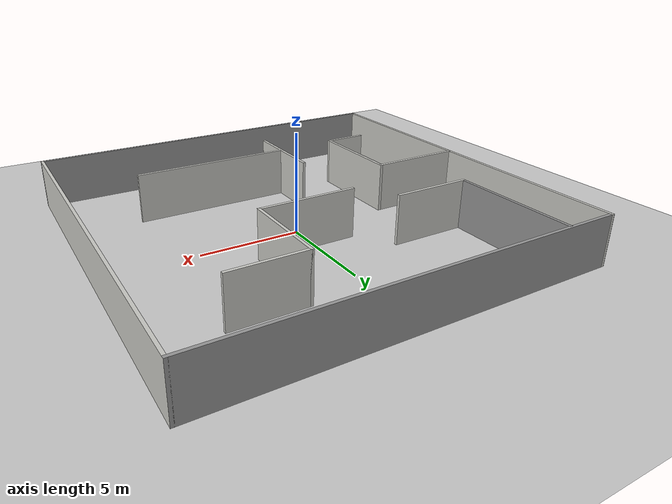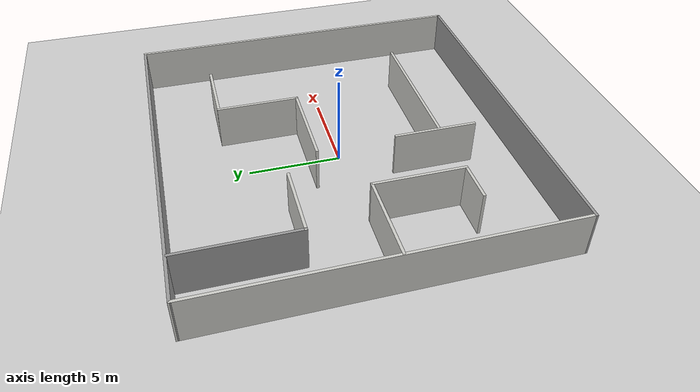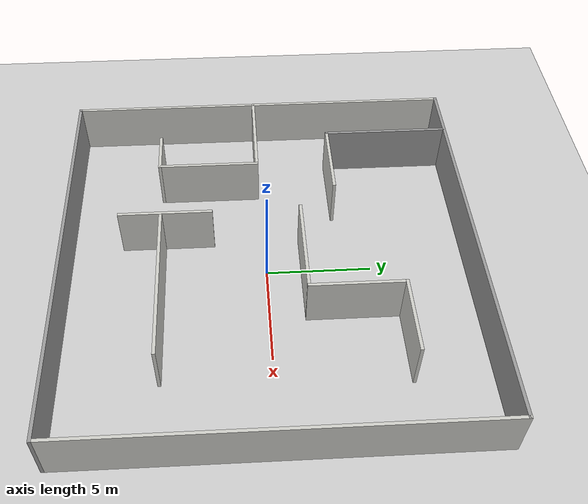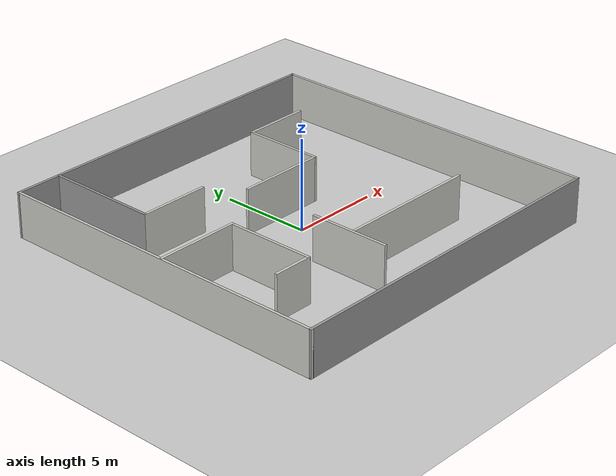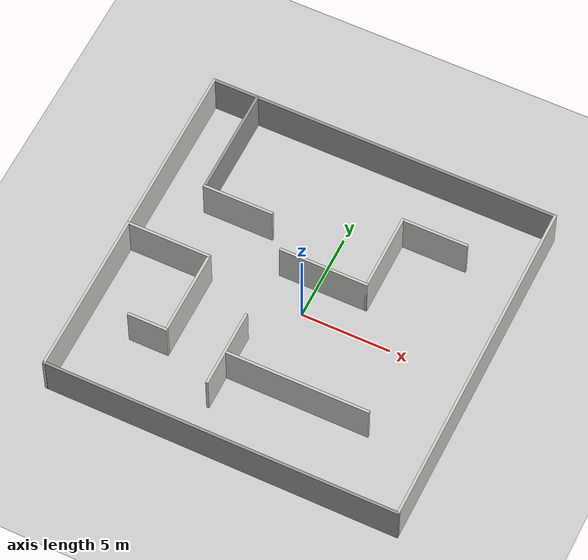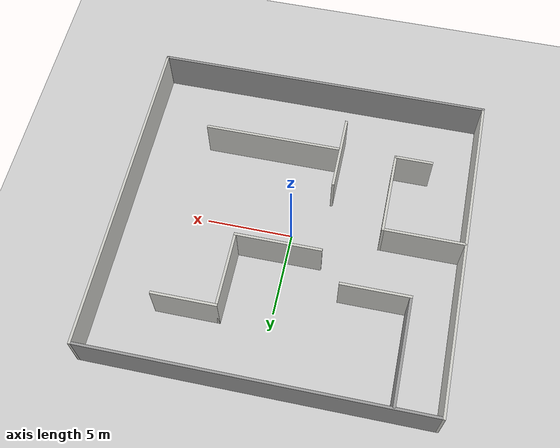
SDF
<sdf version="1.7">
 <world name="default">
  <include><uri>model://ground_plane</uri></include>
  <light name="sun" type="directional">
   <pose>0 0 10 0 -0 0</pose>
   <diffuse>0.8 0.8 0.8 1</diffuse>
   <specular>0.2 0.2 0.2 1</specular>
   <attenuation>
    <range>1000</range>
    <constant>0.9</constant>
    <linear>0.01</linear>
    <quadratic>0.001</quadratic>
   </attenuation>
   <direction>-0.5 0.1 -0.9</direction>
   <spot><inner_angle>0</inner_angle><outer_angle>0</outer_angle><falloff>0</falloff></spot>
  </light>
  <gravity>0 0 -9.8</gravity>
  <magnetic_field>6e-06 2.3e-05 -4.2e-05</magnetic_field>
  <atmosphere type="adiabatic"/>
  <physics type="ode">
   <max_step_size>0.001</max_step_size>
   <real_time_factor>1</real_time_factor>
   <real_time_update_rate>1000</real_time_update_rate>
  </physics>
  <scene><ambient>0.4 0.4 0.4 1</ambient><background>0.7 0.7 0.7 1</background><shadows>1</shadows></scene>
  <audio><device>default</device></audio>
  <spherical_coordinates>
   <surface_model>EARTH_WGS84</surface_model>
   <latitude_deg>0</latitude_deg>
   <longitude_deg>0</longitude_deg>
   <elevation>0</elevation>
   <heading_deg>0</heading_deg>
  </spherical_coordinates>
  <model name="Indoor">
   <pose>-0.002148 0.088455 0 0 -0 0</pose>
   <link name="Wall_11">
    <collision name="Wall_11_Collision">
     <geometry><box><size>19.7635 0.15 2.5</size></box></geometry>
     <pose>0 0 1.25 0 -0 0</pose>
    </collision>
    <visual name="Wall_11_Visual">
     <pose>0 0 1.25 0 -0 0</pose>
     <geometry><box><size>19.7635 0.15 2.5</size></box></geometry>
     <material>
      <script><uri>file://media/materials/scripts/gazebo.material</uri><name>Gazebo/Grey</name></script>
      <ambient>1 1 1 1</ambient>
     </material>
     <meta><layer>0</layer></meta>
    </visual>
    <pose>-4.1e-05 9.5702 0 0 -0 1.7e-05</pose>
   </link>
   <link name="Wall_12">
    <collision name="Wall_12_Collision">
     <geometry><box><size>19.25 0.15 2.5</size></box></geometry>
     <pose>0 0 1.25 0 -0 0</pose>
    </collision>
    <visual name="Wall_12_Visual">
     <pose>0 0 1.25 0 -0 0</pose>
     <geometry><box><size>19.25 0.15 2.5</size></box></geometry>
     <material>
      <script><uri>file://media/materials/scripts/gazebo.material</uri><name>Gazebo/CeilingTiled</name></script>
      <ambient>1 1 1 1</ambient>
     </material>
     <meta><layer>0</layer></meta>
    </visual>
    <pose>9.8067 0.020366 0 0 -0 -1.5708</pose>
   </link>
   <link name="Wall_15">
    <collision name="Wall_15_Collision">
     <geometry><box><size>6.25 0.15 2.5</size></box></geometry>
     <pose>0 0 1.25 0 -0 0</pose>
    </collision>
    <visual name="Wall_15_Visual">
     <pose>0 0 1.25 0 -0 0</pose>
     <geometry><box><size>6.25 0.15 2.5</size></box></geometry>
     <material>
      <script><uri>file://media/materials/scripts/gazebo.material</uri><name>Gazebo/Grey</name></script>
      <ambient>1 1 1 1</ambient>
     </material>
     <meta><layer>0</layer></meta>
    </visual>
    <pose>-7.27014 6.43628 0 0 -0 -1.5708</pose>
   </link>
   <link name="Wall_16">
    <collision name="Wall_16_Collision">
     <geometry><box><size>4 0.15 2.5</size></box></geometry>
     <pose>0 0 1.25 0 -0 0</pose>
    </collision>
    <visual name="Wall_16_Visual">
     <pose>0 0 1.25 0 -0 0</pose>
     <geometry><box><size>4 0.15 2.5</size></box></geometry>
     <material>
      <script><uri>file://media/materials/scripts/gazebo.material</uri><name>Gazebo/CeilingTiled</name></script>
      <ambient>1 1 1 1</ambient>
     </material>
     <meta><layer>0</layer></meta>
    </visual>
    <pose>-5.34514 3.38627 0 0 -0 0</pose>
   </link>
   <link name="Wall_21">
    <collision name="Wall_21_Collision">
     <geometry><box><size>4.75 0.15 2.5</size></box></geometry>
     <pose>0 0 1.25 0 -0 0</pose>
    </collision>
    <visual name="Wall_21_Visual">
     <pose>0 0 1.25 0 -0 0</pose>
     <geometry><box><size>4.75 0.15 2.5</size></box></geometry>
     <material>
      <script><uri>file://media/materials/scripts/gazebo.material</uri><name>Gazebo/CeilingTiled</name></script>
      <ambient>1 1 1 1</ambient>
     </material>
     <meta><layer>0</layer></meta>
    </visual>
    <pose>-7.45099 -0.341702 0 0 -0 0</pose>
   </link>
   <link name="Wall_23">
    <collision name="Wall_23_Collision">
     <geometry><box><size>5 0.15 2.5</size></box></geometry>
     <pose>0 0 1.25 0 -0 0</pose>
    </collision>
    <visual name="Wall_23_Visual">
     <pose>0 0 1.25 0 -0 0</pose>
     <geometry><box><size>5 0.15 2.5</size></box></geometry>
     <material>
      <script><uri>file://media/materials/scripts/gazebo.material</uri><name>Gazebo/CeilingTiled</name></script>
      <ambient>1 1 1 1</ambient>
     </material>
     <meta><layer>0</layer></meta>
    </visual>
    <pose>-5.15099 -2.7667 0 0 -0 -1.5708</pose>
   </link>
   <link name="Wall_24">
    <collision name="Wall_24_Collision">
     <geometry><box><size>2.25 0.15 2.5</size></box></geometry>
     <pose>0 0 1.25 0 -0 0</pose>
    </collision>
    <visual name="Wall_24_Visual">
     <pose>0 0 1.25 0 -0 0</pose>
     <geometry><box><size>2.25 0.15 2.5</size></box></geometry>
     <material>
      <script><uri>file://media/materials/scripts/gazebo.material</uri><name>Gazebo/CeilingTiled</name></script>
      <ambient>1 1 1 1</ambient>
     </material>
     <meta><layer>0</layer></meta>
    </visual>
    <pose>-6.20099 -5.1917 0 0 -0 3.14159</pose>
   </link>
   <link name="Wall_27">
    <collision name="Wall_27_Collision">
     <geometry><box><size>4.5 0.15 2.5</size></box></geometry>
     <pose>0 0 1.25 0 -0 0</pose>
    </collision>
    <visual name="Wall_27_Visual">
     <pose>0 0 1.25 0 -0 0</pose>
     <geometry><box><size>4.5 0.15 2.5</size></box></geometry>
     <material>
      <script><uri>file://media/materials/scripts/gazebo.material</uri><name>Gazebo/CeilingTiled</name></script>
      <ambient>1 1 1 1</ambient>
     </material>
     <meta><layer>0</layer></meta>
    </visual>
    <pose>-1.90485 -4.84055 0 0 -0 -1.5708</pose>
   </link>
   <link name="Wall_29">
    <collision name="Wall_29_Collision">
     <geometry><box><size>8 0.15 2.5</size></box></geometry>
     <pose>0 0 1.25 0 -0 0</pose>
    </collision>
    <visual name="Wall_29_Visual">
     <pose>0 0 1.25 0 -0 0</pose>
     <geometry><box><size>8 0.15 2.5</size></box></geometry>
     <material>
      <script><uri>file://media/materials/scripts/gazebo.material</uri><name>Gazebo/CeilingTiled</name></script>
      <ambient>1 1 1 1</ambient>
     </material>
     <meta><layer>0</layer></meta>
    </visual>
    <pose>2.13141 -5.05757 0 0 -0 0</pose>
   </link>
   <link name="Wall_31">
    <collision name="Wall_31_Collision">
     <geometry><box><size>5 0.15 2.5</size></box></geometry>
     <pose>0 0 1.25 0 -0 0</pose>
    </collision>
    <visual name="Wall_31_Visual">
     <pose>0 0 1.25 0 -0 0</pose>
     <geometry><box><size>5 0.15 2.5</size></box></geometry>
     <material>
      <script><uri>file://media/materials/scripts/gazebo.material</uri><name>Gazebo/CeilingTiled</name></script>
      <ambient>1 1 1 1</ambient>
     </material>
     <meta><layer>0</layer></meta>
    </visual>
    <pose>0.408897 1.61784 0 0 -0 0</pose>
   </link>
   <link name="Wall_32">
    <collision name="Wall_32_Collision">
     <geometry><box><size>4.5 0.15 2.5</size></box></geometry>
     <pose>0 0 1.25 0 -0 0</pose>
    </collision>
    <visual name="Wall_32_Visual">
     <pose>0 0 1.25 0 -0 0</pose>
     <geometry><box><size>4.5 0.15 2.5</size></box></geometry>
     <material>
      <script><uri>file://media/materials/scripts/gazebo.material</uri><name>Gazebo/CeilingTiled</name></script>
      <ambient>1 1 1 1</ambient>
     </material>
     <meta><layer>0</layer></meta>
    </visual>
    <pose>2.8339 3.79284 0 0 -0 1.5708</pose>
   </link>
   <link name="Wall_33">
    <collision name="Wall_33_Collision">
     <geometry><box><size>3.75 0.15 2.5</size></box></geometry>
     <pose>0 0 1.25 0 -0 0</pose>
    </collision>
    <visual name="Wall_33_Visual">
     <pose>0 0 1.25 0 -0 0</pose>
     <geometry><box><size>3.75 0.15 2.5</size></box></geometry>
     <material>
      <script><uri>file://media/materials/scripts/gazebo.material</uri><name>Gazebo/CeilingTiled</name></script>
      <ambient>1 1 1 1</ambient>
     </material>
     <meta><layer>0</layer></meta>
    </visual>
    <pose>4.6339 5.96784 0 0 -0 0</pose>
   </link>
   <link name="Wall_5">
    <collision name="Wall_5_Collision">
     <geometry><box><size>19.75 0.15 2.5</size></box></geometry>
     <pose>0 0 1.25 0 -0 0</pose>
    </collision>
    <visual name="Wall_5_Visual">
     <pose>0 0 1.25 0 -0 0</pose>
     <geometry><box><size>19.75 0.15 2.5</size></box></geometry>
     <material>
      <script><uri>file://media/materials/scripts/gazebo.material</uri><name>Gazebo/Grey</name></script>
      <ambient>1 1 1 1</ambient>
     </material>
     <meta><layer>0</layer></meta>
    </visual>
    <pose>0.006838 -9.57027 0 0 -0 3.14159</pose>
   </link>
   <link name="Wall_6">
    <collision name="Wall_6_Collision">
     <geometry><box><size>0.15 0.15 2.5</size></box></geometry>
     <pose>0 0 1.25 0 -0 0</pose>
    </collision>
    <visual name="Wall_6_Visual">
     <pose>0 0 1.25 0 -0 0</pose>
     <geometry><box><size>0.15 0.15 2.5</size></box></geometry>
     <material>
      <script><uri>file://media/materials/scripts/gazebo.material</uri><name>Gazebo/Grey</name></script>
      <ambient>1 1 1 1</ambient>
     </material>
     <meta><layer>0</layer></meta>
    </visual>
    <pose>-9.79316 -9.57027 0 0 -0 0</pose>
   </link>
   <link name="Wall_7">
    <collision name="Wall_7_Collision">
     <geometry><box><size>19.2904 0.15 2.5</size></box></geometry>
     <pose>0 0 1.25 0 -0 0</pose>
    </collision>
    <visual name="Wall_7_Visual">
     <pose>0 0 1.25 0 -0 0</pose>
     <geometry><box><size>19.2904 0.15 2.5</size></box></geometry>
     <material>
      <script><uri>file://media/materials/scripts/gazebo.material</uri><name>Gazebo/CeilingTiled</name></script>
      <ambient>1 1 1 1</ambient>
     </material>
     <meta><layer>0</layer></meta>
    </visual>
    <pose>-9.79997 -0.000122 0 0 -0 1.57151</pose>
   </link>
   <static>1</static>
  </model>
 </world>
</sdf>
